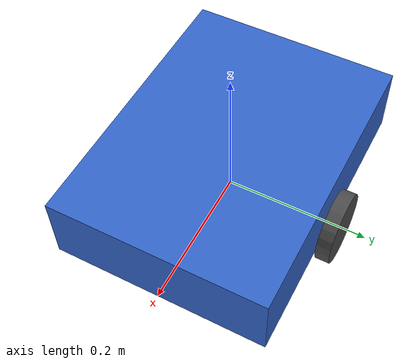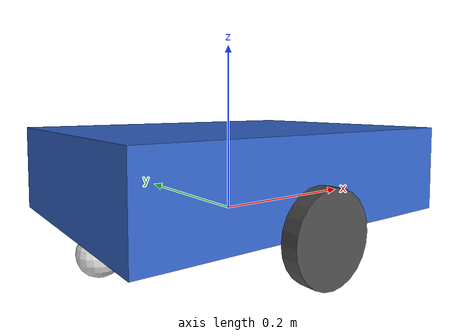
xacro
<?xml version="1.0"?>
<!--
  simplebot.urdf.xacro — Top-level Xacro for SimpleBot
  Generates the same URDF as lesson_24 but uses properties, macros,
  and includes for maintainability.
-->
<robot name="simplebot" xmlns:xacro="http://www.ros.org/wiki/xacro">

  <!-- Includes -->
  <xacro:include filename="$(find lesson_25_xacro_urdf)/urdf/materials.xacro"/>
  <xacro:include filename="$(find lesson_25_xacro_urdf)/urdf/wheel_macro.xacro"/>

  <!-- ==================== Properties ==================== -->
  <xacro:property name="chassis_length" value="0.4"/>
  <xacro:property name="chassis_width"  value="0.3"/>
  <xacro:property name="chassis_height" value="0.1"/>
  <xacro:property name="chassis_mass"   value="5.0"/>

  <xacro:property name="wheel_radius" value="0.05"/>
  <xacro:property name="wheel_width"  value="0.02"/>
  <xacro:property name="wheel_y_offset" value="0.16"/>

  <xacro:property name="caster_radius" value="0.025"/>
  <xacro:property name="caster_mass"   value="0.1"/>

  <!-- ==================== Base Link ==================== -->
  <link name="base_link">
    <visual>
      <geometry>
        <box size="${chassis_length} ${chassis_width} ${chassis_height}"/>
      </geometry>
      <origin xyz="0 0 ${chassis_height/2}" rpy="0 0 0"/>
      <material name="blue"/>
    </visual>
    <collision>
      <geometry>
        <box size="${chassis_length} ${chassis_width} ${chassis_height}"/>
      </geometry>
      <origin xyz="0 0 ${chassis_height/2}" rpy="0 0 0"/>
    </collision>
    <inertial>
      <mass value="${chassis_mass}"/>
      <origin xyz="0 0 ${chassis_height/2}" rpy="0 0 0"/>
      <inertia ixx="${chassis_mass/12.0*(chassis_width**2 + chassis_height**2)}"
               ixy="0" ixz="0"
               iyy="${chassis_mass/12.0*(chassis_length**2 + chassis_height**2)}"
               iyz="0"
               izz="${chassis_mass/12.0*(chassis_length**2 + chassis_width**2)}"/>
    </inertial>
  </link>

  <!-- ==================== Drive Wheels (macro) ==================== -->
  <xacro:wheel prefix="left"  y_offset="${wheel_y_offset}"  radius="${wheel_radius}" width="${wheel_width}"/>
  <xacro:wheel prefix="right" y_offset="${-wheel_y_offset}" radius="${wheel_radius}" width="${wheel_width}"/>

  <!-- ==================== Caster Wheel ==================== -->
  <link name="caster_wheel">
    <visual>
      <geometry>
        <sphere radius="${caster_radius}"/>
      </geometry>
      <material name="white"/>
    </visual>
    <collision>
      <geometry>
        <sphere radius="${caster_radius}"/>
      </geometry>
    </collision>
    <inertial>
      <mass value="${caster_mass}"/>
      <inertia ixx="${2.0/5.0*caster_mass*caster_radius**2}"
               ixy="0" ixz="0"
               iyy="${2.0/5.0*caster_mass*caster_radius**2}"
               iyz="0"
               izz="${2.0/5.0*caster_mass*caster_radius**2}"/>
    </inertial>
  </link>

  <joint name="caster_joint" type="fixed">
    <parent link="base_link"/>
    <child link="caster_wheel"/>
    <origin xyz="${-chassis_length/2 + caster_radius + 0.01} 0 ${-caster_radius}" rpy="0 0 0"/>
  </joint>

</robot>

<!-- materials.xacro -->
<!-- materials.xacro — shared colour definitions for SimpleBot -->
<robot xmlns:xacro="http://www.ros.org/wiki/xacro">

  <material name="blue">
    <color rgba="0.2 0.4 0.8 1.0"/>
  </material>

  <material name="dark_grey">
    <color rgba="0.3 0.3 0.3 1.0"/>
  </material>

  <material name="white">
    <color rgba="0.9 0.9 0.9 1.0"/>
  </material>

</robot>

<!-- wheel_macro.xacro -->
<!-- wheel_macro.xacro — parameterised wheel link + joint -->
<robot xmlns:xacro="http://www.ros.org/wiki/xacro">

  <xacro:macro name="wheel" params="prefix y_offset radius width">

    <link name="${prefix}_wheel">
      <visual>
        <geometry>
          <cylinder radius="${radius}" length="${width}"/>
        </geometry>
        <material name="dark_grey"/>
      </visual>
      <collision>
        <geometry>
          <cylinder radius="${radius}" length="${width}"/>
        </geometry>
      </collision>
      <inertial>
        <mass value="0.5"/>
        <!-- Cylinder inertia: Ixx=Iyy = m/12*(3r²+h²), Izz = m*r²/2 -->
        <inertia ixx="${0.5/12.0*(3*radius*radius + width*width)}"
                 ixy="0" ixz="0"
                 iyy="${0.5/12.0*(3*radius*radius + width*width)}"
                 iyz="0"
                 izz="${0.5*radius*radius/2.0}"/>
      </inertial>
    </link>

    <joint name="${prefix}_wheel_joint" type="continuous">
      <parent link="base_link"/>
      <child link="${prefix}_wheel"/>
      <origin xyz="0 ${y_offset} 0" rpy="${-pi/2} 0 0"/>
      <axis xyz="0 0 1"/>
    </joint>

  </xacro:macro>

</robot>
